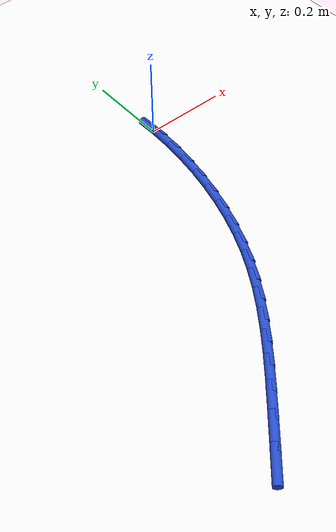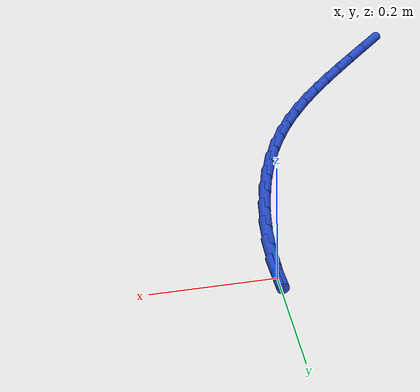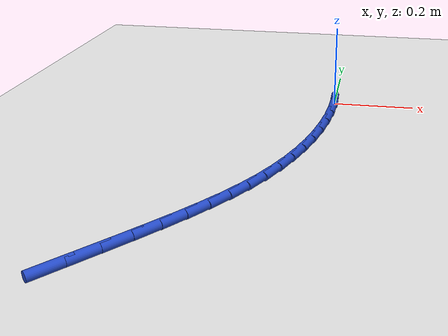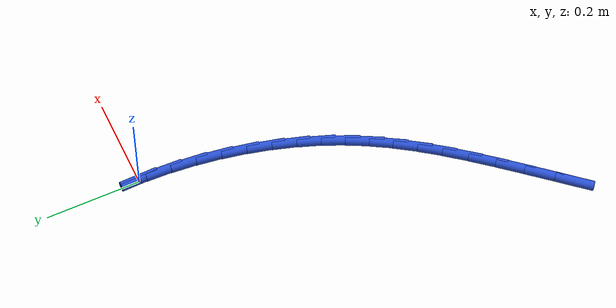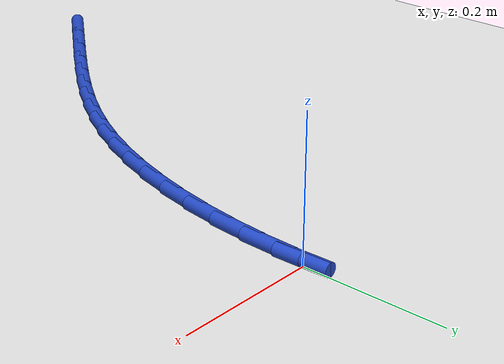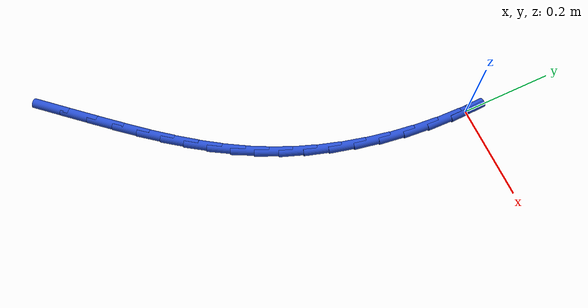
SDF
<sdf version="1.6">
 <world name="default">
  <model name="ground_plane">
   <static>1</static>
   <link name="link">
    <collision name="collision">
     <geometry><plane><normal>0 0 1</normal><size>100 100</size></plane></geometry>
     <surface><friction><ode><mu>100</mu><mu2>50</mu2></ode></friction></surface>
    </collision>
    <visual name="visual">
     <cast_shadows>0</cast_shadows>
     <geometry><plane><normal>0 0 1</normal><size>100 100</size></plane></geometry>
     <material>
      <script><uri>file://media/materials/scripts/gazebo.material</uri><name>Gazebo/WhiteGlow</name></script>
     </material>
    </visual>
   </link>
  </model>
  <model name="line">
   <link name="link_0">
    <pose>-1.0408340855860843e-17 9.71445146547012e-17 0.01 0 1.57 -1.5418892007476261</pose>
    <collision name="collision">
     <geometry><cylinder><radius>0.01</radius><length>0.08</length></cylinder></geometry>
    </collision>
    <visual name="visual">
     <material>
      <script><name>Gazebo/Blue</name><uri>file://media/materials/scripts/gazebo.material</uri></script>
     </material>
     <geometry><cylinder><radius>0.01</radius><length>0.08</length></cylinder></geometry>
    </visual>
   </link>
   <link name="link_133">
    <pose>-0.37490585261991366 -0.7932062957719811 0.01 0 1.57 0.8492510123818708</pose>
    <collision name="collision">
     <geometry><cylinder><radius>0.01</radius><length>0.08</length></cylinder></geometry>
    </collision>
    <visual name="visual">
     <material>
      <script><name>Gazebo/Blue</name><uri>file://media/materials/scripts/gazebo.material</uri></script>
     </material>
     <geometry><cylinder><radius>0.01</radius><length>0.08</length></cylinder></geometry>
    </visual>
   </link>
   <link name="link_134">
    <pose>-0.33309751214566613 -0.7456863234580782 0.01 0 1.57 0.8528775073861549</pose>
    <collision name="collision">
     <geometry><cylinder><radius>0.01</radius><length>0.08</length></cylinder></geometry>
    </collision>
    <visual name="visual">
     <material>
      <script><name>Gazebo/Blue</name><uri>file://media/materials/scripts/gazebo.material</uri></script>
     </material>
     <geometry><cylinder><radius>0.01</radius><length>0.08</length></cylinder></geometry>
    </visual>
   </link>
   <link name="link_135">
    <pose>-0.29373497377494007 -0.7006177668430865 0.01 0 1.57 0.8618019755713915</pose>
    <collision name="collision">
     <geometry><cylinder><radius>0.01</radius><length>0.08</length></cylinder></geometry>
    </collision>
    <visual name="visual">
     <material>
      <script><name>Gazebo/Blue</name><uri>file://media/materials/scripts/gazebo.material</uri></script>
     </material>
     <geometry><cylinder><radius>0.01</radius><length>0.08</length></cylinder></geometry>
    </visual>
   </link>
   <link name="link_136">
    <pose>-0.25686747677193283 -0.657637713898185 0.01 0 1.57 0.8791347725426649</pose>
    <collision name="collision">
     <geometry><cylinder><radius>0.01</radius><length>0.08</length></cylinder></geometry>
    </collision>
    <visual name="visual">
     <material>
      <script><name>Gazebo/Blue</name><uri>file://media/materials/scripts/gazebo.material</uri></script>
     </material>
     <geometry><cylinder><radius>0.01</radius><length>0.08</length></cylinder></geometry>
    </visual>
   </link>
   <link name="link_137">
    <pose>-0.22247672161074997 -0.61610967180991 0.01 0 1.57 0.9056799438723125</pose>
    <collision name="collision">
     <geometry><cylinder><radius>0.01</radius><length>0.08</length></cylinder></geometry>
    </collision>
    <visual name="visual">
     <material>
      <script><name>Gazebo/Blue</name><uri>file://media/materials/scripts/gazebo.material</uri></script>
     </material>
     <geometry><cylinder><radius>0.01</radius><length>0.08</length></cylinder></geometry>
    </visual>
   </link>
   <link name="link_138">
    <pose>-0.1905443992146596 -0.5753971090770253 0.01 0 1.57 0.9417869790913108</pose>
    <collision name="collision">
     <geometry><cylinder><radius>0.01</radius><length>0.08</length></cylinder></geometry>
    </collision>
    <visual name="visual">
     <material>
      <script><name>Gazebo/Blue</name><uri>file://media/materials/scripts/gazebo.material</uri></script>
     </material>
     <geometry><cylinder><radius>0.01</radius><length>0.08</length></cylinder></geometry>
    </visual>
   </link>
   <link name="link_139">
    <pose>-0.1610522005069285 -0.5348634941982914 0.01 0 1.57 0.9871481972282669</pose>
    <collision name="collision">
     <geometry><cylinder><radius>0.01</radius><length>0.08</length></cylinder></geometry>
    </collision>
    <visual name="visual">
     <material>
      <script><name>Gazebo/Blue</name><uri>file://media/materials/scripts/gazebo.material</uri></script>
     </material>
     <geometry><cylinder><radius>0.01</radius><length>0.08</length></cylinder></geometry>
    </visual>
   </link>
   <link name="link_140">
    <pose>-0.13398181641082557 -0.4938722956724722 0.01 0 1.57 1.0406481558230272</pose>
    <collision name="collision">
     <geometry><cylinder><radius>0.01</radius><length>0.08</length></cylinder></geometry>
    </collision>
    <visual name="visual">
     <material>
      <script><name>Gazebo/Blue</name><uri>file://media/materials/scripts/gazebo.material</uri></script>
     </material>
     <geometry><cylinder><radius>0.01</radius><length>0.08</length></cylinder></geometry>
    </visual>
   </link>
   <link name="link_141">
    <pose>-0.10931493784961757 -0.4517869819983289 0.01 0 1.57 1.1003489009899603</pose>
    <collision name="collision">
     <geometry><cylinder><radius>0.01</radius><length>0.08</length></cylinder></geometry>
    </collision>
    <visual name="visual">
     <material>
      <script><name>Gazebo/Blue</name><uri>file://media/materials/scripts/gazebo.material</uri></script>
     </material>
     <geometry><cylinder><radius>0.01</radius><length>0.08</length></cylinder></geometry>
    </visual>
   </link>
   <link name="link_142">
    <pose>-0.08703325574657288 -0.4079710216746245 0.01 0 1.57 1.1627611695330908</pose>
    <collision name="collision">
     <geometry><cylinder><radius>0.01</radius><length>0.08</length></cylinder></geometry>
    </collision>
    <visual name="visual">
     <material>
      <script><name>Gazebo/Blue</name><uri>file://media/materials/scripts/gazebo.material</uri></script>
     </material>
     <geometry><cylinder><radius>0.01</radius><length>0.08</length></cylinder></geometry>
    </visual>
   </link>
   <link name="link_143">
    <pose>-0.0671321658411282 -0.36193535315189024 0.01 0 1.57 1.2225163653071234</pose>
    <collision name="collision">
     <geometry><cylinder><radius>0.01</radius><length>0.08</length></cylinder></geometry>
    </collision>
    <visual name="visual">
     <material>
      <script><name>Gazebo/Blue</name><uri>file://media/materials/scripts/gazebo.material</uri></script>
     </material>
     <geometry><cylinder><radius>0.01</radius><length>0.08</length></cylinder></geometry>
    </visual>
   </link>
   <link name="link_144">
    <pose>-0.049666595345730265 -0.31383150015707106 0.01 0 1.57 1.2792479252627291</pose>
    <collision name="collision">
     <geometry><cylinder><radius>0.01</radius><length>0.08</length></cylinder></geometry>
    </collision>
    <visual name="visual">
     <material>
      <script><name>Gazebo/Blue</name><uri>file://media/materials/scripts/gazebo.material</uri></script>
     </material>
     <geometry><cylinder><radius>0.01</radius><length>0.08</length></cylinder></geometry>
    </visual>
   </link>
   <link name="link_145">
    <pose>-0.03470763192464903 -0.26398488010685317 0.01 0 1.57 1.3338147144471102</pose>
    <collision name="collision">
     <geometry><cylinder><radius>0.01</radius><length>0.08</length></cylinder></geometry>
    </collision>
    <visual name="visual">
     <material>
      <script><name>Gazebo/Blue</name><uri>file://media/materials/scripts/gazebo.material</uri></script>
     </material>
     <geometry><cylinder><radius>0.01</radius><length>0.08</length></cylinder></geometry>
    </visual>
   </link>
   <link name="link_146">
    <pose>-0.022326363551198575 -0.21272091374338417 0.01 0 1.57 1.3870032527258955</pose>
    <collision name="collision">
     <geometry><cylinder><radius>0.01</radius><length>0.08</length></cylinder></geometry>
    </collision>
    <visual name="visual">
     <material>
      <script><name>Gazebo/Blue</name><uri>file://media/materials/scripts/gazebo.material</uri></script>
     </material>
     <geometry><cylinder><radius>0.01</radius><length>0.08</length></cylinder></geometry>
    </visual>
   </link>
   <link name="link_147">
    <pose>-0.01259387819869384 -0.1603650218088148 0.01 0 1.57 1.4395465926147208</pose>
    <collision name="collision">
     <geometry><cylinder><radius>0.01</radius><length>0.08</length></cylinder></geometry>
    </collision>
    <visual name="visual">
     <material>
      <script><name>Gazebo/Blue</name><uri>file://media/materials/scripts/gazebo.material</uri></script>
     </material>
     <geometry><cylinder><radius>0.01</radius><length>0.08</length></cylinder></geometry>
    </visual>
   </link>
   <link name="link_148">
    <pose>-0.005581263840449514 -0.10724262504529515 0.01 0 1.57 1.49214299452374</pose>
    <collision name="collision">
     <geometry><cylinder><radius>0.01</radius><length>0.08</length></cylinder></geometry>
    </collision>
    <visual name="visual">
     <material>
      <script><name>Gazebo/Blue</name><uri>file://media/materials/scripts/gazebo.material</uri></script>
     </material>
     <geometry><cylinder><radius>0.01</radius><length>0.08</length></cylinder></geometry>
    </visual>
   </link>
   <link name="link_149">
    <pose>-0.0013596084497799754 -0.053679144194973064 0.01 0 1.57 1.5454733109549599</pose>
    <collision name="collision">
     <geometry><cylinder><radius>0.01</radius><length>0.08</length></cylinder></geometry>
    </collision>
    <visual name="visual">
     <material>
      <script><name>Gazebo/Blue</name><uri>file://media/materials/scripts/gazebo.material</uri></script>
     </material>
     <geometry><cylinder><radius>0.01</radius><length>0.08</length></cylinder></geometry>
    </visual>
   </link>
   <link name="link_150">
    <pose>1.5612511283791264e-17 3.191891195797325e-16 0.01 0 1.57 -1.5413762689041925</pose>
    <collision name="collision">
     <geometry><cylinder><radius>0.01</radius><length>0.08</length></cylinder></geometry>
    </collision>
    <visual name="visual">
     <material>
      <script><name>Gazebo/Blue</name><uri>file://media/materials/scripts/gazebo.material</uri></script>
     </material>
     <geometry><cylinder><radius>0.01</radius><length>0.08</length></cylinder></geometry>
    </visual>
   </link>
  </model>
 </world>
</sdf>
